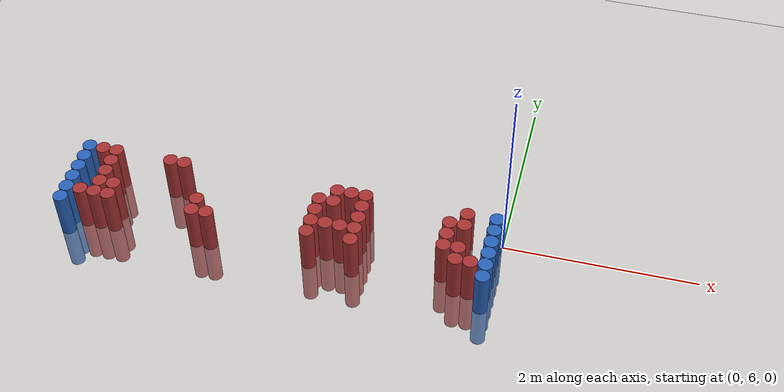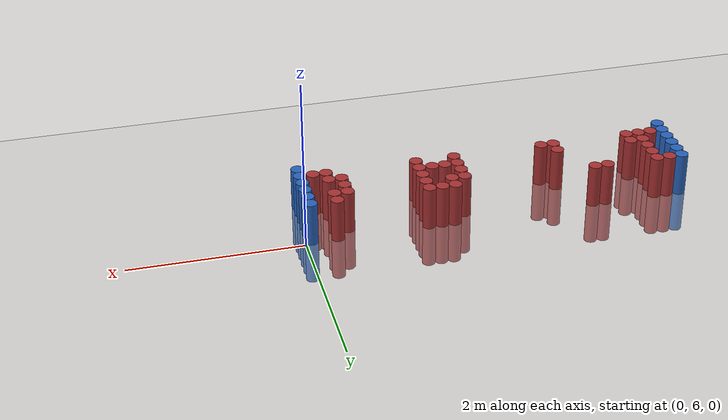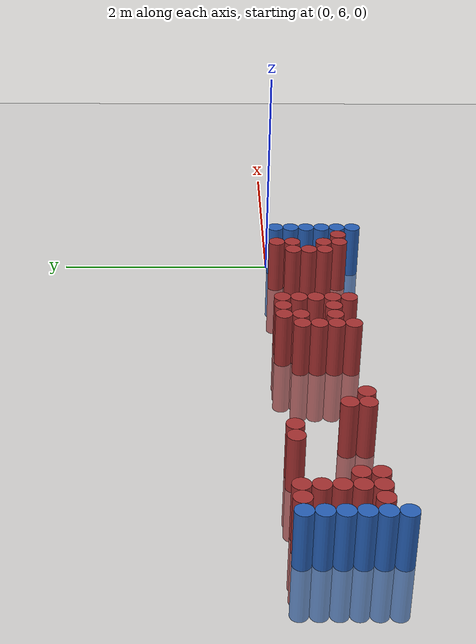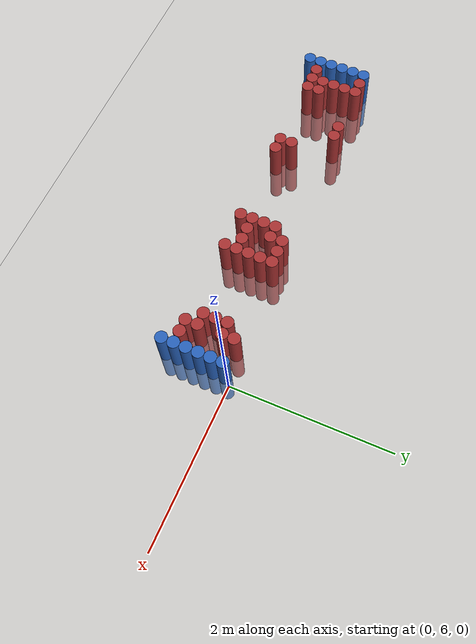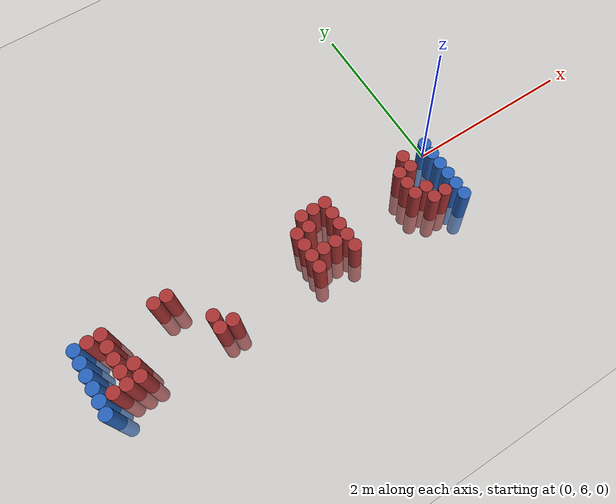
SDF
<sdf version="1.6">
 <world name="default">
  <model name="ground_plane">
   <static>1</static>
   <link name="link">
    <collision name="collision">
     <geometry><plane><normal>0 0 1</normal><size>100 100</size></plane></geometry>
     <surface><friction><ode><mu>100</mu><mu2>50</mu2></ode></friction></surface>
    </collision>
    <visual name="visual">
     <cast_shadows>0</cast_shadows>
     <geometry><plane><normal>0 0 1</normal><size>100 100</size></plane></geometry>
     <material>
      <script><uri>file://media/materials/scripts/gazebo.material</uri><name>Gazebo/Grey</name></script>
     </material>
    </visual>
   </link>
  </model>
  <model name="unit_cylinder_96">
   <static>1</static>
   <pose>-4.425000 5.175000 0.000000 0.000000 0.000000 0.000000</pose>
   <link name="link">
    <inertial>
     <mass>1</mass>
     <inertia><ixx>0.145833</ixx><ixy>0</ixy><ixz>0</ixz><iyy>0.145833</iyy><iyz>0</iyz><izz>0.125</izz></inertia>
    </inertial>
    <collision name="collision">
     <geometry><cylinder><radius>0.075000</radius><length>1</length></cylinder></geometry>
    </collision>
    <visual name="visual">
     <geometry><cylinder><radius>0.075000</radius><length>1</length></cylinder></geometry>
     <material>
      <ambient>0.152000 0.379000 0.720000 1</ambient>
      <diffuse>0.152000 0.379000 0.720000 1</diffuse>
     </material>
     <material>
      <script><name>Gazebo/Grey</name><uri>file://media/materials/scripts/gazebo.material</uri></script>
     </material>
    </visual>
   </link>
  </model>
  <model name="unit_cylinder_97">
   <static>1</static>
   <pose>-4.425000 5.325000 0.000000 0.000000 0.000000 0.000000</pose>
   <link name="link">
    <inertial>
     <mass>1</mass>
     <inertia><ixx>0.145833</ixx><ixy>0</ixy><ixz>0</ixz><iyy>0.145833</iyy><iyz>0</iyz><izz>0.125</izz></inertia>
    </inertial>
    <collision name="collision">
     <geometry><cylinder><radius>0.075000</radius><length>1</length></cylinder></geometry>
    </collision>
    <visual name="visual">
     <geometry><cylinder><radius>0.075000</radius><length>1</length></cylinder></geometry>
     <material>
      <ambient>0.152000 0.379000 0.720000 1</ambient>
      <diffuse>0.152000 0.379000 0.720000 1</diffuse>
     </material>
     <material>
      <script><name>Gazebo/Grey</name><uri>file://media/materials/scripts/gazebo.material</uri></script>
     </material>
    </visual>
   </link>
  </model>
  <model name="unit_cylinder_98">
   <static>1</static>
   <pose>-4.425000 5.475000 0.000000 0.000000 0.000000 0.000000</pose>
   <link name="link">
    <inertial>
     <mass>1</mass>
     <inertia><ixx>0.145833</ixx><ixy>0</ixy><ixz>0</ixz><iyy>0.145833</iyy><iyz>0</iyz><izz>0.125</izz></inertia>
    </inertial>
    <collision name="collision">
     <geometry><cylinder><radius>0.075000</radius><length>1</length></cylinder></geometry>
    </collision>
    <visual name="visual">
     <geometry><cylinder><radius>0.075000</radius><length>1</length></cylinder></geometry>
     <material>
      <ambient>0.152000 0.379000 0.720000 1</ambient>
      <diffuse>0.152000 0.379000 0.720000 1</diffuse>
     </material>
     <material>
      <script><name>Gazebo/Grey</name><uri>file://media/materials/scripts/gazebo.material</uri></script>
     </material>
    </visual>
   </link>
  </model>
  <model name="unit_cylinder_99">
   <static>1</static>
   <pose>-4.425000 5.625000 0.000000 0.000000 0.000000 0.000000</pose>
   <link name="link">
    <inertial>
     <mass>1</mass>
     <inertia><ixx>0.145833</ixx><ixy>0</ixy><ixz>0</ixz><iyy>0.145833</iyy><iyz>0</iyz><izz>0.125</izz></inertia>
    </inertial>
    <collision name="collision">
     <geometry><cylinder><radius>0.075000</radius><length>1</length></cylinder></geometry>
    </collision>
    <visual name="visual">
     <geometry><cylinder><radius>0.075000</radius><length>1</length></cylinder></geometry>
     <material>
      <ambient>0.152000 0.379000 0.720000 1</ambient>
      <diffuse>0.152000 0.379000 0.720000 1</diffuse>
     </material>
     <material>
      <script><name>Gazebo/Grey</name><uri>file://media/materials/scripts/gazebo.material</uri></script>
     </material>
    </visual>
   </link>
  </model>
  <model name="unit_cylinder_100">
   <static>1</static>
   <pose>-4.425000 5.775000 0.000000 0.000000 0.000000 0.000000</pose>
   <link name="link">
    <inertial>
     <mass>1</mass>
     <inertia><ixx>0.145833</ixx><ixy>0</ixy><ixz>0</ixz><iyy>0.145833</iyy><iyz>0</iyz><izz>0.125</izz></inertia>
    </inertial>
    <collision name="collision">
     <geometry><cylinder><radius>0.075000</radius><length>1</length></cylinder></geometry>
    </collision>
    <visual name="visual">
     <geometry><cylinder><radius>0.075000</radius><length>1</length></cylinder></geometry>
     <material>
      <ambient>0.152000 0.379000 0.720000 1</ambient>
      <diffuse>0.152000 0.379000 0.720000 1</diffuse>
     </material>
     <material>
      <script><name>Gazebo/Grey</name><uri>file://media/materials/scripts/gazebo.material</uri></script>
     </material>
    </visual>
   </link>
  </model>
  <model name="unit_cylinder_101">
   <static>1</static>
   <pose>-4.425000 5.925000 0.000000 0.000000 0.000000 0.000000</pose>
   <link name="link">
    <inertial>
     <mass>1</mass>
     <inertia><ixx>0.145833</ixx><ixy>0</ixy><ixz>0</ixz><iyy>0.145833</iyy><iyz>0</iyz><izz>0.125</izz></inertia>
    </inertial>
    <collision name="collision">
     <geometry><cylinder><radius>0.075000</radius><length>1</length></cylinder></geometry>
    </collision>
    <visual name="visual">
     <geometry><cylinder><radius>0.075000</radius><length>1</length></cylinder></geometry>
     <material>
      <ambient>0.152000 0.379000 0.720000 1</ambient>
      <diffuse>0.152000 0.379000 0.720000 1</diffuse>
     </material>
     <material>
      <script><name>Gazebo/Grey</name><uri>file://media/materials/scripts/gazebo.material</uri></script>
     </material>
    </visual>
   </link>
  </model>
  <model name="unit_cylinder_126">
   <static>1</static>
   <pose>-4.275000 5.325000 0.000000 0.000000 0.000000 0.000000</pose>
   <link name="link">
    <inertial>
     <mass>1</mass>
     <inertia><ixx>0.145833</ixx><ixy>0</ixy><ixz>0</ixz><iyy>0.145833</iyy><iyz>0</iyz><izz>0.125</izz></inertia>
    </inertial>
    <collision name="collision">
     <geometry><cylinder><radius>0.075000</radius><length>1</length></cylinder></geometry>
    </collision>
    <visual name="visual">
     <geometry><cylinder><radius>0.075000</radius><length>1</length></cylinder></geometry>
     <material>
      <ambient>0.648000 0.192000 0.192000 1</ambient>
      <diffuse>0.648000 0.192000 0.192000 1</diffuse>
     </material>
     <material>
      <script><name>Gazebo/Grey</name><uri>file://media/materials/scripts/gazebo.material</uri></script>
     </material>
    </visual>
   </link>
  </model>
  <model name="unit_cylinder_127">
   <static>1</static>
   <pose>-4.275000 5.925000 0.000000 0.000000 0.000000 0.000000</pose>
   <link name="link">
    <inertial>
     <mass>1</mass>
     <inertia><ixx>0.145833</ixx><ixy>0</ixy><ixz>0</ixz><iyy>0.145833</iyy><iyz>0</iyz><izz>0.125</izz></inertia>
    </inertial>
    <collision name="collision">
     <geometry><cylinder><radius>0.075000</radius><length>1</length></cylinder></geometry>
    </collision>
    <visual name="visual">
     <geometry><cylinder><radius>0.075000</radius><length>1</length></cylinder></geometry>
     <material>
      <ambient>0.648000 0.192000 0.192000 1</ambient>
      <diffuse>0.648000 0.192000 0.192000 1</diffuse>
     </material>
     <material>
      <script><name>Gazebo/Grey</name><uri>file://media/materials/scripts/gazebo.material</uri></script>
     </material>
    </visual>
   </link>
  </model>
  <model name="unit_cylinder_140">
   <static>1</static>
   <pose>-4.125000 5.325000 0.000000 0.000000 0.000000 0.000000</pose>
   <link name="link">
    <inertial>
     <mass>1</mass>
     <inertia><ixx>0.145833</ixx><ixy>0</ixy><ixz>0</ixz><iyy>0.145833</iyy><iyz>0</iyz><izz>0.125</izz></inertia>
    </inertial>
    <collision name="collision">
     <geometry><cylinder><radius>0.075000</radius><length>1</length></cylinder></geometry>
    </collision>
    <visual name="visual">
     <geometry><cylinder><radius>0.075000</radius><length>1</length></cylinder></geometry>
     <material>
      <ambient>0.648000 0.192000 0.192000 1</ambient>
      <diffuse>0.648000 0.192000 0.192000 1</diffuse>
     </material>
     <material>
      <script><name>Gazebo/Grey</name><uri>file://media/materials/scripts/gazebo.material</uri></script>
     </material>
    </visual>
   </link>
  </model>
  <model name="unit_cylinder_141">
   <static>1</static>
   <pose>-4.125000 5.475000 0.000000 0.000000 0.000000 0.000000</pose>
   <link name="link">
    <inertial>
     <mass>1</mass>
     <inertia><ixx>0.145833</ixx><ixy>0</ixy><ixz>0</ixz><iyy>0.145833</iyy><iyz>0</iyz><izz>0.125</izz></inertia>
    </inertial>
    <collision name="collision">
     <geometry><cylinder><radius>0.075000</radius><length>1</length></cylinder></geometry>
    </collision>
    <visual name="visual">
     <geometry><cylinder><radius>0.075000</radius><length>1</length></cylinder></geometry>
     <material>
      <ambient>0.648000 0.192000 0.192000 1</ambient>
      <diffuse>0.648000 0.192000 0.192000 1</diffuse>
     </material>
     <material>
      <script><name>Gazebo/Grey</name><uri>file://media/materials/scripts/gazebo.material</uri></script>
     </material>
    </visual>
   </link>
  </model>
  <model name="unit_cylinder_142">
   <static>1</static>
   <pose>-4.125000 5.625000 0.000000 0.000000 0.000000 0.000000</pose>
   <link name="link">
    <inertial>
     <mass>1</mass>
     <inertia><ixx>0.145833</ixx><ixy>0</ixy><ixz>0</ixz><iyy>0.145833</iyy><iyz>0</iyz><izz>0.125</izz></inertia>
    </inertial>
    <collision name="collision">
     <geometry><cylinder><radius>0.075000</radius><length>1</length></cylinder></geometry>
    </collision>
    <visual name="visual">
     <geometry><cylinder><radius>0.075000</radius><length>1</length></cylinder></geometry>
     <material>
      <ambient>0.648000 0.192000 0.192000 1</ambient>
      <diffuse>0.648000 0.192000 0.192000 1</diffuse>
     </material>
     <material>
      <script><name>Gazebo/Grey</name><uri>file://media/materials/scripts/gazebo.material</uri></script>
     </material>
    </visual>
   </link>
  </model>
  <model name="unit_cylinder_143">
   <static>1</static>
   <pose>-4.125000 5.775000 0.000000 0.000000 0.000000 0.000000</pose>
   <link name="link">
    <inertial>
     <mass>1</mass>
     <inertia><ixx>0.145833</ixx><ixy>0</ixy><ixz>0</ixz><iyy>0.145833</iyy><iyz>0</iyz><izz>0.125</izz></inertia>
    </inertial>
    <collision name="collision">
     <geometry><cylinder><radius>0.075000</radius><length>1</length></cylinder></geometry>
    </collision>
    <visual name="visual">
     <geometry><cylinder><radius>0.075000</radius><length>1</length></cylinder></geometry>
     <material>
      <ambient>0.648000 0.192000 0.192000 1</ambient>
      <diffuse>0.648000 0.192000 0.192000 1</diffuse>
     </material>
     <material>
      <script><name>Gazebo/Grey</name><uri>file://media/materials/scripts/gazebo.material</uri></script>
     </material>
    </visual>
   </link>
  </model>
  <model name="unit_cylinder_144">
   <static>1</static>
   <pose>-4.125000 5.925000 0.000000 0.000000 0.000000 0.000000</pose>
   <link name="link">
    <inertial>
     <mass>1</mass>
     <inertia><ixx>0.145833</ixx><ixy>0</ixy><ixz>0</ixz><iyy>0.145833</iyy><iyz>0</iyz><izz>0.125</izz></inertia>
    </inertial>
    <collision name="collision">
     <geometry><cylinder><radius>0.075000</radius><length>1</length></cylinder></geometry>
    </collision>
    <visual name="visual">
     <geometry><cylinder><radius>0.075000</radius><length>1</length></cylinder></geometry>
     <material>
      <ambient>0.648000 0.192000 0.192000 1</ambient>
      <diffuse>0.648000 0.192000 0.192000 1</diffuse>
     </material>
     <material>
      <script><name>Gazebo/Grey</name><uri>file://media/materials/scripts/gazebo.material</uri></script>
     </material>
    </visual>
   </link>
  </model>
  <model name="unit_cylinder_152">
   <static>1</static>
   <pose>-3.975000 5.325000 0.000000 0.000000 0.000000 0.000000</pose>
   <link name="link">
    <inertial>
     <mass>1</mass>
     <inertia><ixx>0.145833</ixx><ixy>0</ixy><ixz>0</ixz><iyy>0.145833</iyy><iyz>0</iyz><izz>0.125</izz></inertia>
    </inertial>
    <collision name="collision">
     <geometry><cylinder><radius>0.075000</radius><length>1</length></cylinder></geometry>
    </collision>
    <visual name="visual">
     <geometry><cylinder><radius>0.075000</radius><length>1</length></cylinder></geometry>
     <material>
      <ambient>0.648000 0.192000 0.192000 1</ambient>
      <diffuse>0.648000 0.192000 0.192000 1</diffuse>
     </material>
     <material>
      <script><name>Gazebo/Grey</name><uri>file://media/materials/scripts/gazebo.material</uri></script>
     </material>
    </visual>
   </link>
  </model>
  <model name="unit_cylinder_153">
   <static>1</static>
   <pose>-3.975000 5.475000 0.000000 0.000000 0.000000 0.000000</pose>
   <link name="link">
    <inertial>
     <mass>1</mass>
     <inertia><ixx>0.145833</ixx><ixy>0</ixy><ixz>0</ixz><iyy>0.145833</iyy><iyz>0</iyz><izz>0.125</izz></inertia>
    </inertial>
    <collision name="collision">
     <geometry><cylinder><radius>0.075000</radius><length>1</length></cylinder></geometry>
    </collision>
    <visual name="visual">
     <geometry><cylinder><radius>0.075000</radius><length>1</length></cylinder></geometry>
     <material>
      <ambient>0.648000 0.192000 0.192000 1</ambient>
      <diffuse>0.648000 0.192000 0.192000 1</diffuse>
     </material>
     <material>
      <script><name>Gazebo/Grey</name><uri>file://media/materials/scripts/gazebo.material</uri></script>
     </material>
    </visual>
   </link>
  </model>
  <model name="unit_cylinder_167">
   <static>1</static>
   <pose>-3.525000 5.925000 0.000000 0.000000 0.000000 0.000000</pose>
   <link name="link">
    <inertial>
     <mass>1</mass>
     <inertia><ixx>0.145833</ixx><ixy>0</ixy><ixz>0</ixz><iyy>0.145833</iyy><iyz>0</iyz><izz>0.125</izz></inertia>
    </inertial>
    <collision name="collision">
     <geometry><cylinder><radius>0.075000</radius><length>1</length></cylinder></geometry>
    </collision>
    <visual name="visual">
     <geometry><cylinder><radius>0.075000</radius><length>1</length></cylinder></geometry>
     <material>
      <ambient>0.648000 0.192000 0.192000 1</ambient>
      <diffuse>0.648000 0.192000 0.192000 1</diffuse>
     </material>
     <material>
      <script><name>Gazebo/Grey</name><uri>file://media/materials/scripts/gazebo.material</uri></script>
     </material>
    </visual>
   </link>
  </model>
  <model name="unit_cylinder_178">
   <static>1</static>
   <pose>-3.375000 5.925000 0.000000 0.000000 0.000000 0.000000</pose>
   <link name="link">
    <inertial>
     <mass>1</mass>
     <inertia><ixx>0.145833</ixx><ixy>0</ixy><ixz>0</ixz><iyy>0.145833</iyy><iyz>0</iyz><izz>0.125</izz></inertia>
    </inertial>
    <collision name="collision">
     <geometry><cylinder><radius>0.075000</radius><length>1</length></cylinder></geometry>
    </collision>
    <visual name="visual">
     <geometry><cylinder><radius>0.075000</radius><length>1</length></cylinder></geometry>
     <material>
      <ambient>0.648000 0.192000 0.192000 1</ambient>
      <diffuse>0.648000 0.192000 0.192000 1</diffuse>
     </material>
     <material>
      <script><name>Gazebo/Grey</name><uri>file://media/materials/scripts/gazebo.material</uri></script>
     </material>
    </visual>
   </link>
  </model>
  <model name="unit_cylinder_198">
   <static>1</static>
   <pose>-3.075000 5.325000 0.000000 0.000000 0.000000 0.000000</pose>
   <link name="link">
    <inertial>
     <mass>1</mass>
     <inertia><ixx>0.145833</ixx><ixy>0</ixy><ixz>0</ixz><iyy>0.145833</iyy><iyz>0</iyz><izz>0.125</izz></inertia>
    </inertial>
    <collision name="collision">
     <geometry><cylinder><radius>0.075000</radius><length>1</length></cylinder></geometry>
    </collision>
    <visual name="visual">
     <geometry><cylinder><radius>0.075000</radius><length>1</length></cylinder></geometry>
     <material>
      <ambient>0.648000 0.192000 0.192000 1</ambient>
      <diffuse>0.648000 0.192000 0.192000 1</diffuse>
     </material>
     <material>
      <script><name>Gazebo/Grey</name><uri>file://media/materials/scripts/gazebo.material</uri></script>
     </material>
    </visual>
   </link>
  </model>
  <model name="unit_cylinder_199">
   <static>1</static>
   <pose>-3.075000 5.475000 0.000000 0.000000 0.000000 0.000000</pose>
   <link name="link">
    <inertial>
     <mass>1</mass>
     <inertia><ixx>0.145833</ixx><ixy>0</ixy><ixz>0</ixz><iyy>0.145833</iyy><iyz>0</iyz><izz>0.125</izz></inertia>
    </inertial>
    <collision name="collision">
     <geometry><cylinder><radius>0.075000</radius><length>1</length></cylinder></geometry>
    </collision>
    <visual name="visual">
     <geometry><cylinder><radius>0.075000</radius><length>1</length></cylinder></geometry>
     <material>
      <ambient>0.648000 0.192000 0.192000 1</ambient>
      <diffuse>0.648000 0.192000 0.192000 1</diffuse>
     </material>
     <material>
      <script><name>Gazebo/Grey</name><uri>file://media/materials/scripts/gazebo.material</uri></script>
     </material>
    </visual>
   </link>
  </model>
  <model name="unit_cylinder_202">
   <static>1</static>
   <pose>-2.925000 5.325000 0.000000 0.000000 0.000000 0.000000</pose>
   <link name="link">
    <inertial>
     <mass>1</mass>
     <inertia><ixx>0.145833</ixx><ixy>0</ixy><ixz>0</ixz><iyy>0.145833</iyy><iyz>0</iyz><izz>0.125</izz></inertia>
    </inertial>
    <collision name="collision">
     <geometry><cylinder><radius>0.075000</radius><length>1</length></cylinder></geometry>
    </collision>
    <visual name="visual">
     <geometry><cylinder><radius>0.075000</radius><length>1</length></cylinder></geometry>
     <material>
      <ambient>0.648000 0.192000 0.192000 1</ambient>
      <diffuse>0.648000 0.192000 0.192000 1</diffuse>
     </material>
     <material>
      <script><name>Gazebo/Grey</name><uri>file://media/materials/scripts/gazebo.material</uri></script>
     </material>
    </visual>
   </link>
  </model>
  <model name="unit_cylinder_213">
   <static>1</static>
   <pose>-1.875000 5.325000 0.000000 0.000000 0.000000 0.000000</pose>
   <link name="link">
    <inertial>
     <mass>1</mass>
     <inertia><ixx>0.145833</ixx><ixy>0</ixy><ixz>0</ixz><iyy>0.145833</iyy><iyz>0</iyz><izz>0.125</izz></inertia>
    </inertial>
    <collision name="collision">
     <geometry><cylinder><radius>0.075000</radius><length>1</length></cylinder></geometry>
    </collision>
    <visual name="visual">
     <geometry><cylinder><radius>0.075000</radius><length>1</length></cylinder></geometry>
     <material>
      <ambient>0.648000 0.192000 0.192000 1</ambient>
      <diffuse>0.648000 0.192000 0.192000 1</diffuse>
     </material>
     <material>
      <script><name>Gazebo/Grey</name><uri>file://media/materials/scripts/gazebo.material</uri></script>
     </material>
    </visual>
   </link>
  </model>
  <model name="unit_cylinder_214">
   <static>1</static>
   <pose>-1.875000 5.475000 0.000000 0.000000 0.000000 0.000000</pose>
   <link name="link">
    <inertial>
     <mass>1</mass>
     <inertia><ixx>0.145833</ixx><ixy>0</ixy><ixz>0</ixz><iyy>0.145833</iyy><iyz>0</iyz><izz>0.125</izz></inertia>
    </inertial>
    <collision name="collision">
     <geometry><cylinder><radius>0.075000</radius><length>1</length></cylinder></geometry>
    </collision>
    <visual name="visual">
     <geometry><cylinder><radius>0.075000</radius><length>1</length></cylinder></geometry>
     <material>
      <ambient>0.648000 0.192000 0.192000 1</ambient>
      <diffuse>0.648000 0.192000 0.192000 1</diffuse>
     </material>
     <material>
      <script><name>Gazebo/Grey</name><uri>file://media/materials/scripts/gazebo.material</uri></script>
     </material>
    </visual>
   </link>
  </model>
  <model name="unit_cylinder_215">
   <static>1</static>
   <pose>-1.875000 5.625000 0.000000 0.000000 0.000000 0.000000</pose>
   <link name="link">
    <inertial>
     <mass>1</mass>
     <inertia><ixx>0.145833</ixx><ixy>0</ixy><ixz>0</ixz><iyy>0.145833</iyy><iyz>0</iyz><izz>0.125</izz></inertia>
    </inertial>
    <collision name="collision">
     <geometry><cylinder><radius>0.075000</radius><length>1</length></cylinder></geometry>
    </collision>
    <visual name="visual">
     <geometry><cylinder><radius>0.075000</radius><length>1</length></cylinder></geometry>
     <material>
      <ambient>0.648000 0.192000 0.192000 1</ambient>
      <diffuse>0.648000 0.192000 0.192000 1</diffuse>
     </material>
     <material>
      <script><name>Gazebo/Grey</name><uri>file://media/materials/scripts/gazebo.material</uri></script>
     </material>
    </visual>
   </link>
  </model>
  <model name="unit_cylinder_216">
   <static>1</static>
   <pose>-1.875000 5.775000 0.000000 0.000000 0.000000 0.000000</pose>
   <link name="link">
    <inertial>
     <mass>1</mass>
     <inertia><ixx>0.145833</ixx><ixy>0</ixy><ixz>0</ixz><iyy>0.145833</iyy><iyz>0</iyz><izz>0.125</izz></inertia>
    </inertial>
    <collision name="collision">
     <geometry><cylinder><radius>0.075000</radius><length>1</length></cylinder></geometry>
    </collision>
    <visual name="visual">
     <geometry><cylinder><radius>0.075000</radius><length>1</length></cylinder></geometry>
     <material>
      <ambient>0.648000 0.192000 0.192000 1</ambient>
      <diffuse>0.648000 0.192000 0.192000 1</diffuse>
     </material>
     <material>
      <script><name>Gazebo/Grey</name><uri>file://media/materials/scripts/gazebo.material</uri></script>
     </material>
    </visual>
   </link>
  </model>
  <model name="unit_cylinder_217">
   <static>1</static>
   <pose>-1.725000 5.475000 0.000000 0.000000 0.000000 0.000000</pose>
   <link name="link">
    <inertial>
     <mass>1</mass>
     <inertia><ixx>0.145833</ixx><ixy>0</ixy><ixz>0</ixz><iyy>0.145833</iyy><iyz>0</iyz><izz>0.125</izz></inertia>
    </inertial>
    <collision name="collision">
     <geometry><cylinder><radius>0.075000</radius><length>1</length></cylinder></geometry>
    </collision>
    <visual name="visual">
     <geometry><cylinder><radius>0.075000</radius><length>1</length></cylinder></geometry>
     <material>
      <ambient>0.648000 0.192000 0.192000 1</ambient>
      <diffuse>0.648000 0.192000 0.192000 1</diffuse>
     </material>
     <material>
      <script><name>Gazebo/Grey</name><uri>file://media/materials/scripts/gazebo.material</uri></script>
     </material>
    </visual>
   </link>
  </model>
  <model name="unit_cylinder_218">
   <static>1</static>
   <pose>-1.725000 5.775000 0.000000 0.000000 0.000000 0.000000</pose>
   <link name="link">
    <inertial>
     <mass>1</mass>
     <inertia><ixx>0.145833</ixx><ixy>0</ixy><ixz>0</ixz><iyy>0.145833</iyy><iyz>0</iyz><izz>0.125</izz></inertia>
    </inertial>
    <collision name="collision">
     <geometry><cylinder><radius>0.075000</radius><length>1</length></cylinder></geometry>
    </collision>
    <visual name="visual">
     <geometry><cylinder><radius>0.075000</radius><length>1</length></cylinder></geometry>
     <material>
      <ambient>0.648000 0.192000 0.192000 1</ambient>
      <diffuse>0.648000 0.192000 0.192000 1</diffuse>
     </material>
     <material>
      <script><name>Gazebo/Grey</name><uri>file://media/materials/scripts/gazebo.material</uri></script>
     </material>
    </visual>
   </link>
  </model>
  <model name="unit_cylinder_219">
   <static>1</static>
   <pose>-1.725000 5.925000 0.000000 0.000000 0.000000 0.000000</pose>
   <link name="link">
    <inertial>
     <mass>1</mass>
     <inertia><ixx>0.145833</ixx><ixy>0</ixy><ixz>0</ixz><iyy>0.145833</iyy><iyz>0</iyz><izz>0.125</izz></inertia>
    </inertial>
    <collision name="collision">
     <geometry><cylinder><radius>0.075000</radius><length>1</length></cylinder></geometry>
    </collision>
    <visual name="visual">
     <geometry><cylinder><radius>0.075000</radius><length>1</length></cylinder></geometry>
     <material>
      <ambient>0.648000 0.192000 0.192000 1</ambient>
      <diffuse>0.648000 0.192000 0.192000 1</diffuse>
     </material>
     <material>
      <script><name>Gazebo/Grey</name><uri>file://media/materials/scripts/gazebo.material</uri></script>
     </material>
    </visual>
   </link>
  </model>
  <model name="unit_cylinder_221">
   <static>1</static>
   <pose>-1.575000 5.475000 0.000000 0.000000 0.000000 0.000000</pose>
   <link name="link">
    <inertial>
     <mass>1</mass>
     <inertia><ixx>0.145833</ixx><ixy>0</ixy><ixz>0</ixz><iyy>0.145833</iyy><iyz>0</iyz><izz>0.125</izz></inertia>
    </inertial>
    <collision name="collision">
     <geometry><cylinder><radius>0.075000</radius><length>1</length></cylinder></geometry>
    </collision>
    <visual name="visual">
     <geometry><cylinder><radius>0.075000</radius><length>1</length></cylinder></geometry>
     <material>
      <ambient>0.648000 0.192000 0.192000 1</ambient>
      <diffuse>0.648000 0.192000 0.192000 1</diffuse>
     </material>
     <material>
      <script><name>Gazebo/Grey</name><uri>file://media/materials/scripts/gazebo.material</uri></script>
     </material>
    </visual>
   </link>
  </model>
  <model name="unit_cylinder_222">
   <static>1</static>
   <pose>-1.575000 5.925000 0.000000 0.000000 0.000000 0.000000</pose>
   <link name="link">
    <inertial>
     <mass>1</mass>
     <inertia><ixx>0.145833</ixx><ixy>0</ixy><ixz>0</ixz><iyy>0.145833</iyy><iyz>0</iyz><izz>0.125</izz></inertia>
    </inertial>
    <collision name="collision">
     <geometry><cylinder><radius>0.075000</radius><length>1</length></cylinder></geometry>
    </collision>
    <visual name="visual">
     <geometry><cylinder><radius>0.075000</radius><length>1</length></cylinder></geometry>
     <material>
      <ambient>0.648000 0.192000 0.192000 1</ambient>
      <diffuse>0.648000 0.192000 0.192000 1</diffuse>
     </material>
     <material>
      <script><name>Gazebo/Grey</name><uri>file://media/materials/scripts/gazebo.material</uri></script>
     </material>
    </visual>
   </link>
  </model>
  <model name="unit_cylinder_226">
   <static>1</static>
   <pose>-1.425000 5.325000 0.000000 0.000000 0.000000 0.000000</pose>
   <link name="link">
    <inertial>
     <mass>1</mass>
     <inertia><ixx>0.145833</ixx><ixy>0</ixy><ixz>0</ixz><iyy>0.145833</iyy><iyz>0</iyz><izz>0.125</izz></inertia>
    </inertial>
    <collision name="collision">
     <geometry><cylinder><radius>0.075000</radius><length>1</length></cylinder></geometry>
    </collision>
    <visual name="visual">
     <geometry><cylinder><radius>0.075000</radius><length>1</length></cylinder></geometry>
     <material>
      <ambient>0.648000 0.192000 0.192000 1</ambient>
      <diffuse>0.648000 0.192000 0.192000 1</diffuse>
     </material>
     <material>
      <script><name>Gazebo/Grey</name><uri>file://media/materials/scripts/gazebo.material</uri></script>
     </material>
    </visual>
   </link>
  </model>
  <model name="unit_cylinder_227">
   <static>1</static>
   <pose>-1.425000 5.475000 0.000000 0.000000 0.000000 0.000000</pose>
   <link name="link">
    <inertial>
     <mass>1</mass>
     <inertia><ixx>0.145833</ixx><ixy>0</ixy><ixz>0</ixz><iyy>0.145833</iyy><iyz>0</iyz><izz>0.125</izz></inertia>
    </inertial>
    <collision name="collision">
     <geometry><cylinder><radius>0.075000</radius><length>1</length></cylinder></geometry>
    </collision>
    <visual name="visual">
     <geometry><cylinder><radius>0.075000</radius><length>1</length></cylinder></geometry>
     <material>
      <ambient>0.648000 0.192000 0.192000 1</ambient>
      <diffuse>0.648000 0.192000 0.192000 1</diffuse>
     </material>
     <material>
      <script><name>Gazebo/Grey</name><uri>file://media/materials/scripts/gazebo.material</uri></script>
     </material>
    </visual>
   </link>
  </model>
  <model name="unit_cylinder_228">
   <static>1</static>
   <pose>-1.425000 5.625000 0.000000 0.000000 0.000000 0.000000</pose>
   <link name="link">
    <inertial>
     <mass>1</mass>
     <inertia><ixx>0.145833</ixx><ixy>0</ixy><ixz>0</ixz><iyy>0.145833</iyy><iyz>0</iyz><izz>0.125</izz></inertia>
    </inertial>
    <collision name="collision">
     <geometry><cylinder><radius>0.075000</radius><length>1</length></cylinder></geometry>
    </collision>
    <visual name="visual">
     <geometry><cylinder><radius>0.075000</radius><length>1</length></cylinder></geometry>
     <material>
      <ambient>0.648000 0.192000 0.192000 1</ambient>
      <diffuse>0.648000 0.192000 0.192000 1</diffuse>
     </material>
     <material>
      <script><name>Gazebo/Grey</name><uri>file://media/materials/scripts/gazebo.material</uri></script>
     </material>
    </visual>
   </link>
  </model>
  <model name="unit_cylinder_229">
   <static>1</static>
   <pose>-1.425000 5.775000 0.000000 0.000000 0.000000 0.000000</pose>
   <link name="link">
    <inertial>
     <mass>1</mass>
     <inertia><ixx>0.145833</ixx><ixy>0</ixy><ixz>0</ixz><iyy>0.145833</iyy><iyz>0</iyz><izz>0.125</izz></inertia>
    </inertial>
    <collision name="collision">
     <geometry><cylinder><radius>0.075000</radius><length>1</length></cylinder></geometry>
    </collision>
    <visual name="visual">
     <geometry><cylinder><radius>0.075000</radius><length>1</length></cylinder></geometry>
     <material>
      <ambient>0.648000 0.192000 0.192000 1</ambient>
      <diffuse>0.648000 0.192000 0.192000 1</diffuse>
     </material>
     <material>
      <script><name>Gazebo/Grey</name><uri>file://media/materials/scripts/gazebo.material</uri></script>
     </material>
    </visual>
   </link>
  </model>
  <model name="unit_cylinder_230">
   <static>1</static>
   <pose>-1.425000 5.925000 0.000000 0.000000 0.000000 0.000000</pose>
   <link name="link">
    <inertial>
     <mass>1</mass>
     <inertia><ixx>0.145833</ixx><ixy>0</ixy><ixz>0</ixz><iyy>0.145833</iyy><iyz>0</iyz><izz>0.125</izz></inertia>
    </inertial>
    <collision name="collision">
     <geometry><cylinder><radius>0.075000</radius><length>1</length></cylinder></geometry>
    </collision>
    <visual name="visual">
     <geometry><cylinder><radius>0.075000</radius><length>1</length></cylinder></geometry>
     <material>
      <ambient>0.648000 0.192000 0.192000 1</ambient>
      <diffuse>0.648000 0.192000 0.192000 1</diffuse>
     </material>
     <material>
      <script><name>Gazebo/Grey</name><uri>file://media/materials/scripts/gazebo.material</uri></script>
     </material>
    </visual>
   </link>
  </model>
  <model name="unit_cylinder_262">
   <static>1</static>
   <pose>-0.525000 5.475000 0.000000 0.000000 0.000000 0.000000</pose>
   <link name="link">
    <inertial>
     <mass>1</mass>
     <inertia><ixx>0.145833</ixx><ixy>0</ixy><ixz>0</ixz><iyy>0.145833</iyy><iyz>0</iyz><izz>0.125</izz></inertia>
    </inertial>
    <collision name="collision">
     <geometry><cylinder><radius>0.075000</radius><length>1</length></cylinder></geometry>
    </collision>
    <visual name="visual">
     <geometry><cylinder><radius>0.075000</radius><length>1</length></cylinder></geometry>
     <material>
      <ambient>0.648000 0.192000 0.192000 1</ambient>
      <diffuse>0.648000 0.192000 0.192000 1</diffuse>
     </material>
     <material>
      <script><name>Gazebo/Grey</name><uri>file://media/materials/scripts/gazebo.material</uri></script>
     </material>
    </visual>
   </link>
  </model>
  <model name="unit_cylinder_263">
   <static>1</static>
   <pose>-0.525000 5.625000 0.000000 0.000000 0.000000 0.000000</pose>
   <link name="link">
    <inertial>
     <mass>1</mass>
     <inertia><ixx>0.145833</ixx><ixy>0</ixy><ixz>0</ixz><iyy>0.145833</iyy><iyz>0</iyz><izz>0.125</izz></inertia>
    </inertial>
    <collision name="collision">
     <geometry><cylinder><radius>0.075000</radius><length>1</length></cylinder></geometry>
    </collision>
    <visual name="visual">
     <geometry><cylinder><radius>0.075000</radius><length>1</length></cylinder></geometry>
     <material>
      <ambient>0.648000 0.192000 0.192000 1</ambient>
      <diffuse>0.648000 0.192000 0.192000 1</diffuse>
     </material>
     <material>
      <script><name>Gazebo/Grey</name><uri>file://media/materials/scripts/gazebo.material</uri></script>
     </material>
    </visual>
   </link>
  </model>
  <model name="unit_cylinder_264">
   <static>1</static>
   <pose>-0.525000 5.775000 0.000000 0.000000 0.000000 0.000000</pose>
   <link name="link">
    <inertial>
     <mass>1</mass>
     <inertia><ixx>0.145833</ixx><ixy>0</ixy><ixz>0</ixz><iyy>0.145833</iyy><iyz>0</iyz><izz>0.125</izz></inertia>
    </inertial>
    <collision name="collision">
     <geometry><cylinder><radius>0.075000</radius><length>1</length></cylinder></geometry>
    </collision>
    <visual name="visual">
     <geometry><cylinder><radius>0.075000</radius><length>1</length></cylinder></geometry>
     <material>
      <ambient>0.648000 0.192000 0.192000 1</ambient>
      <diffuse>0.648000 0.192000 0.192000 1</diffuse>
     </material>
     <material>
      <script><name>Gazebo/Grey</name><uri>file://media/materials/scripts/gazebo.material</uri></script>
     </material>
    </visual>
   </link>
  </model>
  <model name="unit_cylinder_273">
   <static>1</static>
   <pose>-0.375000 5.325000 0.000000 0.000000 0.000000 0.000000</pose>
   <link name="link">
    <inertial>
     <mass>1</mass>
     <inertia><ixx>0.145833</ixx><ixy>0</ixy><ixz>0</ixz><iyy>0.145833</iyy><iyz>0</iyz><izz>0.125</izz></inertia>
    </inertial>
    <collision name="collision">
     <geometry><cylinder><radius>0.075000</radius><length>1</length></cylinder></geometry>
    </collision>
    <visual name="visual">
     <geometry><cylinder><radius>0.075000</radius><length>1</length></cylinder></geometry>
     <material>
      <ambient>0.648000 0.192000 0.192000 1</ambient>
      <diffuse>0.648000 0.192000 0.192000 1</diffuse>
     </material>
     <material>
      <script><name>Gazebo/Grey</name><uri>file://media/materials/scripts/gazebo.material</uri></script>
     </material>
    </visual>
   </link>
  </model>
  <model name="unit_cylinder_274">
   <static>1</static>
   <pose>-0.375000 5.475000 0.000000 0.000000 0.000000 0.000000</pose>
   <link name="link">
    <inertial>
     <mass>1</mass>
     <inertia><ixx>0.145833</ixx><ixy>0</ixy><ixz>0</ixz><iyy>0.145833</iyy><iyz>0</iyz><izz>0.125</izz></inertia>
    </inertial>
    <collision name="collision">
     <geometry><cylinder><radius>0.075000</radius><length>1</length></cylinder></geometry>
    </collision>
    <visual name="visual">
     <geometry><cylinder><radius>0.075000</radius><length>1</length></cylinder></geometry>
     <material>
      <ambient>0.648000 0.192000 0.192000 1</ambient>
      <diffuse>0.648000 0.192000 0.192000 1</diffuse>
     </material>
     <material>
      <script><name>Gazebo/Grey</name><uri>file://media/materials/scripts/gazebo.material</uri></script>
     </material>
    </visual>
   </link>
  </model>
  <model name="unit_cylinder_275">
   <static>1</static>
   <pose>-0.375000 5.775000 0.000000 0.000000 0.000000 0.000000</pose>
   <link name="link">
    <inertial>
     <mass>1</mass>
     <inertia><ixx>0.145833</ixx><ixy>0</ixy><ixz>0</ixz><iyy>0.145833</iyy><iyz>0</iyz><izz>0.125</izz></inertia>
    </inertial>
    <collision name="collision">
     <geometry><cylinder><radius>0.075000</radius><length>1</length></cylinder></geometry>
    </collision>
    <visual name="visual">
     <geometry><cylinder><radius>0.075000</radius><length>1</length></cylinder></geometry>
     <material>
      <ambient>0.648000 0.192000 0.192000 1</ambient>
      <diffuse>0.648000 0.192000 0.192000 1</diffuse>
     </material>
     <material>
      <script><name>Gazebo/Grey</name><uri>file://media/materials/scripts/gazebo.material</uri></script>
     </material>
    </visual>
   </link>
  </model>
  <model name="unit_cylinder_276">
   <static>1</static>
   <pose>-0.375000 5.925000 0.000000 0.000000 0.000000 0.000000</pose>
   <link name="link">
    <inertial>
     <mass>1</mass>
     <inertia><ixx>0.145833</ixx><ixy>0</ixy><ixz>0</ixz><iyy>0.145833</iyy><iyz>0</iyz><izz>0.125</izz></inertia>
    </inertial>
    <collision name="collision">
     <geometry><cylinder><radius>0.075000</radius><length>1</length></cylinder></geometry>
    </collision>
    <visual name="visual">
     <geometry><cylinder><radius>0.075000</radius><length>1</length></cylinder></geometry>
     <material>
      <ambient>0.648000 0.192000 0.192000 1</ambient>
      <diffuse>0.648000 0.192000 0.192000 1</diffuse>
     </material>
     <material>
      <script><name>Gazebo/Grey</name><uri>file://media/materials/scripts/gazebo.material</uri></script>
     </material>
    </visual>
   </link>
  </model>
  <model name="unit_cylinder_291">
   <static>1</static>
   <pose>-0.225000 5.325000 0.000000 0.000000 0.000000 0.000000</pose>
   <link name="link">
    <inertial>
     <mass>1</mass>
     <inertia><ixx>0.145833</ixx><ixy>0</ixy><ixz>0</ixz><iyy>0.145833</iyy><iyz>0</iyz><izz>0.125</izz></inertia>
    </inertial>
    <collision name="collision">
     <geometry><cylinder><radius>0.075000</radius><length>1</length></cylinder></geometry>
    </collision>
    <visual name="visual">
     <geometry><cylinder><radius>0.075000</radius><length>1</length></cylinder></geometry>
     <material>
      <ambient>0.648000 0.192000 0.192000 1</ambient>
      <diffuse>0.648000 0.192000 0.192000 1</diffuse>
     </material>
     <material>
      <script><name>Gazebo/Grey</name><uri>file://media/materials/scripts/gazebo.material</uri></script>
     </material>
    </visual>
   </link>
  </model>
  <model name="unit_cylinder_306">
   <static>1</static>
   <pose>-0.075000 5.175000 0.000000 0.000000 0.000000 0.000000</pose>
   <link name="link">
    <inertial>
     <mass>1</mass>
     <inertia><ixx>0.145833</ixx><ixy>0</ixy><ixz>0</ixz><iyy>0.145833</iyy><iyz>0</iyz><izz>0.125</izz></inertia>
    </inertial>
    <collision name="collision">
     <geometry><cylinder><radius>0.075000</radius><length>1</length></cylinder></geometry>
    </collision>
    <visual name="visual">
     <geometry><cylinder><radius>0.075000</radius><length>1</length></cylinder></geometry>
     <material>
      <ambient>0.152000 0.379000 0.720000 1</ambient>
      <diffuse>0.152000 0.379000 0.720000 1</diffuse>
     </material>
     <material>
      <script><name>Gazebo/Grey</name><uri>file://media/materials/scripts/gazebo.material</uri></script>
     </material>
    </visual>
   </link>
  </model>
  <model name="unit_cylinder_307">
   <static>1</static>
   <pose>-0.075000 5.325000 0.000000 0.000000 0.000000 0.000000</pose>
   <link name="link">
    <inertial>
     <mass>1</mass>
     <inertia><ixx>0.145833</ixx><ixy>0</ixy><ixz>0</ixz><iyy>0.145833</iyy><iyz>0</iyz><izz>0.125</izz></inertia>
    </inertial>
    <collision name="collision">
     <geometry><cylinder><radius>0.075000</radius><length>1</length></cylinder></geometry>
    </collision>
    <visual name="visual">
     <geometry><cylinder><radius>0.075000</radius><length>1</length></cylinder></geometry>
     <material>
      <ambient>0.152000 0.379000 0.720000 1</ambient>
      <diffuse>0.152000 0.379000 0.720000 1</diffuse>
     </material>
     <material>
      <script><name>Gazebo/Grey</name><uri>file://media/materials/scripts/gazebo.material</uri></script>
     </material>
    </visual>
   </link>
  </model>
  <model name="unit_cylinder_308">
   <static>1</static>
   <pose>-0.075000 5.475000 0.000000 0.000000 0.000000 0.000000</pose>
   <link name="link">
    <inertial>
     <mass>1</mass>
     <inertia><ixx>0.145833</ixx><ixy>0</ixy><ixz>0</ixz><iyy>0.145833</iyy><iyz>0</iyz><izz>0.125</izz></inertia>
    </inertial>
    <collision name="collision">
     <geometry><cylinder><radius>0.075000</radius><length>1</length></cylinder></geometry>
    </collision>
    <visual name="visual">
     <geometry><cylinder><radius>0.075000</radius><length>1</length></cylinder></geometry>
     <material>
      <ambient>0.152000 0.379000 0.720000 1</ambient>
      <diffuse>0.152000 0.379000 0.720000 1</diffuse>
     </material>
     <material>
      <script><name>Gazebo/Grey</name><uri>file://media/materials/scripts/gazebo.material</uri></script>
     </material>
    </visual>
   </link>
  </model>
  <model name="unit_cylinder_309">
   <static>1</static>
   <pose>-0.075000 5.625000 0.000000 0.000000 0.000000 0.000000</pose>
   <link name="link">
    <inertial>
     <mass>1</mass>
     <inertia><ixx>0.145833</ixx><ixy>0</ixy><ixz>0</ixz><iyy>0.145833</iyy><iyz>0</iyz><izz>0.125</izz></inertia>
    </inertial>
    <collision name="collision">
     <geometry><cylinder><radius>0.075000</radius><length>1</length></cylinder></geometry>
    </collision>
    <visual name="visual">
     <geometry><cylinder><radius>0.075000</radius><length>1</length></cylinder></geometry>
     <material>
      <ambient>0.152000 0.379000 0.720000 1</ambient>
      <diffuse>0.152000 0.379000 0.720000 1</diffuse>
     </material>
     <material>
      <script><name>Gazebo/Grey</name><uri>file://media/materials/scripts/gazebo.material</uri></script>
     </material>
    </visual>
   </link>
  </model>
  <model name="unit_cylinder_310">
   <static>1</static>
   <pose>-0.075000 5.775000 0.000000 0.000000 0.000000 0.000000</pose>
   <link name="link">
    <inertial>
     <mass>1</mass>
     <inertia><ixx>0.145833</ixx><ixy>0</ixy><ixz>0</ixz><iyy>0.145833</iyy><iyz>0</iyz><izz>0.125</izz></inertia>
    </inertial>
    <collision name="collision">
     <geometry><cylinder><radius>0.075000</radius><length>1</length></cylinder></geometry>
    </collision>
    <visual name="visual">
     <geometry><cylinder><radius>0.075000</radius><length>1</length></cylinder></geometry>
     <material>
      <ambient>0.152000 0.379000 0.720000 1</ambient>
      <diffuse>0.152000 0.379000 0.720000 1</diffuse>
     </material>
     <material>
      <script><name>Gazebo/Grey</name><uri>file://media/materials/scripts/gazebo.material</uri></script>
     </material>
    </visual>
   </link>
  </model>
  <model name="unit_cylinder_311">
   <static>1</static>
   <pose>-0.075000 5.925000 0.000000 0.000000 0.000000 0.000000</pose>
   <link name="link">
    <inertial>
     <mass>1</mass>
     <inertia><ixx>0.145833</ixx><ixy>0</ixy><ixz>0</ixz><iyy>0.145833</iyy><iyz>0</iyz><izz>0.125</izz></inertia>
    </inertial>
    <collision name="collision">
     <geometry><cylinder><radius>0.075000</radius><length>1</length></cylinder></geometry>
    </collision>
    <visual name="visual">
     <geometry><cylinder><radius>0.075000</radius><length>1</length></cylinder></geometry>
     <material>
      <ambient>0.152000 0.379000 0.720000 1</ambient>
      <diffuse>0.152000 0.379000 0.720000 1</diffuse>
     </material>
     <material>
      <script><name>Gazebo/Grey</name><uri>file://media/materials/scripts/gazebo.material</uri></script>
     </material>
    </visual>
   </link>
  </model>
 </world>
</sdf>
